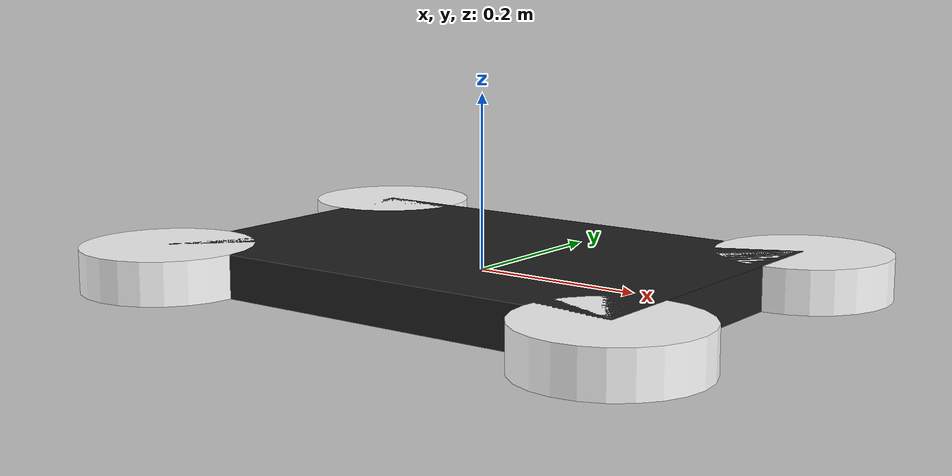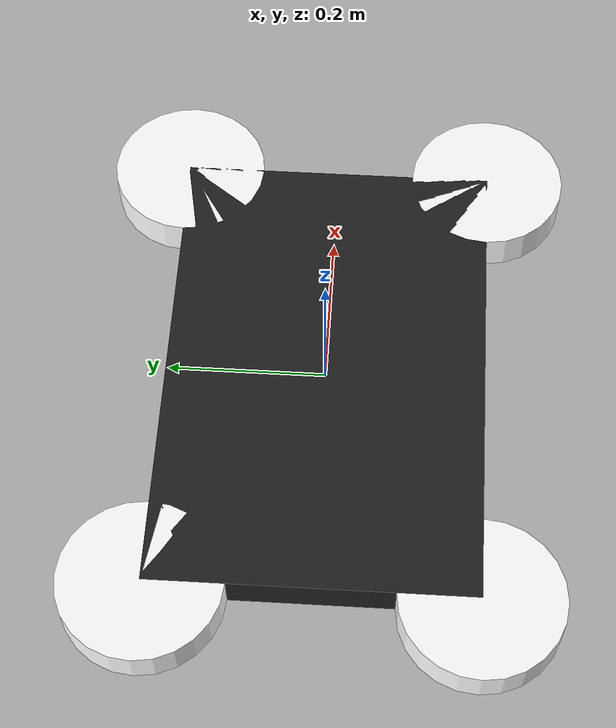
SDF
<sdf version='1.11'>
  <model name='aerial_drone'>
    <link name='dummy_link'>
      <inertial>
        <pose>0 0 0 0 0 0</pose>
        <mass>1.5</mass>
        <inertia>
          <ixx>0.020312500000000001</ixx>
          <ixy>0</ixy>
          <ixz>0</ixz>
          <iyy>0.045312499999999999</iyy>
          <iyz>0</iyz>
          <izz>0.065000000000000002</izz>
        </inertia>
      </inertial>
      <collision name='dummy_link_fixed_joint_lump__base_link_collision'>
        <pose>0 0 0 0 0 0</pose>
        <geometry>
          <box>
            <size>0.59999999999999998 0.40000000000000002 0.050000000000000003</size>
          </box>
        </geometry>
      </collision>
      <visual name='dummy_link_fixed_joint_lump__base_link_visual'>
        <pose>0 0 0 0 0 0</pose>
        <geometry>
          <box>
            <size>0.59999999999999998 0.40000000000000002 0.050000000000000003</size>
          </box>
        </geometry>
        <material>
          <diffuse>0.125 0.125 0.125 1</diffuse>
          <ambient>0.125 0.125 0.125 1</ambient>
        </material>
      </visual>
    </link>
    <joint name='front_left_motor_joint' type='revolute'>
      <pose relative_to='dummy_link'>-0.29999999999999999 0.20000000000000001 0 0 0 0</pose>
      <parent>dummy_link</parent>
      <child>front_left_motor_link</child>
      <axis>
        <xyz>0 0 1</xyz>
        <limit>
          <effort>0</effort>
          <velocity>0</velocity>
          <lower>-inf</lower>
          <upper>inf</upper>
        </limit>
        <dynamics>
          <spring_reference>0</spring_reference>
          <spring_stiffness>0</spring_stiffness>
        </dynamics>
      </axis>
    </joint>
    <link name='front_left_motor_link'>
      <pose relative_to='front_left_motor_joint'>0 0 0 0 0 0</pose>
      <inertial>
        <pose>0 0 0 0 0 0</pose>
        <mass>0.10000000000000001</mass>
        <inertia>
          <ixx>0.00027083333333333338</ixx>
          <ixy>0</ixy>
          <ixz>0</ixz>
          <iyy>0.00027083333333333338</iyy>
          <iyz>0</iyz>
          <izz>0.00050000000000000012</izz>
        </inertia>
      </inertial>
      <collision name='front_left_motor_link_collision'>
        <pose>0 0 0 0 0 0</pose>
        <geometry>
          <cylinder>
            <length>0.050000000000000003</length>
            <radius>0.10000000000000001</radius>
          </cylinder>
        </geometry>
      </collision>
      <visual name='front_left_motor_link_visual'>
        <pose>0 0 0 0 0 0</pose>
        <geometry>
          <cylinder>
            <length>0.050000000000000003</length>
            <radius>0.10000000000000001</radius>
          </cylinder>
        </geometry>
        <material>
          <diffuse>1 1 1 1</diffuse>
          <ambient>1 1 1 1</ambient>
        </material>
      </visual>
    </link>
    <joint name='front_right_motor_joint' type='revolute'>
      <pose relative_to='dummy_link'>0.29999999999999999 0.20000000000000001 0 0 0 0</pose>
      <parent>dummy_link</parent>
      <child>front_right_motor_link</child>
      <axis>
        <xyz>0 0 1</xyz>
        <limit>
          <effort>0</effort>
          <velocity>0</velocity>
          <lower>-inf</lower>
          <upper>inf</upper>
        </limit>
        <dynamics>
          <spring_reference>0</spring_reference>
          <spring_stiffness>0</spring_stiffness>
        </dynamics>
      </axis>
    </joint>
    <link name='front_right_motor_link'>
      <pose relative_to='front_right_motor_joint'>0 0 0 0 0 0</pose>
      <inertial>
        <pose>0 0 0 0 0 0</pose>
        <mass>0.10000000000000001</mass>
        <inertia>
          <ixx>0.00027083333333333338</ixx>
          <ixy>0</ixy>
          <ixz>0</ixz>
          <iyy>0.00027083333333333338</iyy>
          <iyz>0</iyz>
          <izz>0.00050000000000000012</izz>
        </inertia>
      </inertial>
      <collision name='front_right_motor_link_collision'>
        <pose>0 0 0 0 0 0</pose>
        <geometry>
          <cylinder>
            <length>0.050000000000000003</length>
            <radius>0.10000000000000001</radius>
          </cylinder>
        </geometry>
      </collision>
      <visual name='front_right_motor_link_visual'>
        <pose>0 0 0 0 0 0</pose>
        <geometry>
          <cylinder>
            <length>0.050000000000000003</length>
            <radius>0.10000000000000001</radius>
          </cylinder>
        </geometry>
        <material>
          <diffuse>1 1 1 1</diffuse>
          <ambient>1 1 1 1</ambient>
        </material>
      </visual>
    </link>
    <joint name='rear_left_motor_joint' type='revolute'>
      <pose relative_to='dummy_link'>-0.29999999999999999 -0.20000000000000001 0 0 0 0</pose>
      <parent>dummy_link</parent>
      <child>rear_left_motor_link</child>
      <axis>
        <xyz>0 0 1</xyz>
        <limit>
          <effort>0</effort>
          <velocity>0</velocity>
          <lower>-inf</lower>
          <upper>inf</upper>
        </limit>
        <dynamics>
          <spring_reference>0</spring_reference>
          <spring_stiffness>0</spring_stiffness>
        </dynamics>
      </axis>
    </joint>
    <link name='rear_left_motor_link'>
      <pose relative_to='rear_left_motor_joint'>0 0 0 0 0 0</pose>
      <inertial>
        <pose>0 0 0 0 0 0</pose>
        <mass>0.10000000000000001</mass>
        <inertia>
          <ixx>0.00027083333333333338</ixx>
          <ixy>0</ixy>
          <ixz>0</ixz>
          <iyy>0.00027083333333333338</iyy>
          <iyz>0</iyz>
          <izz>0.00050000000000000012</izz>
        </inertia>
      </inertial>
      <collision name='rear_left_motor_link_collision'>
        <pose>0 0 0 0 0 0</pose>
        <geometry>
          <cylinder>
            <length>0.050000000000000003</length>
            <radius>0.10000000000000001</radius>
          </cylinder>
        </geometry>
      </collision>
      <visual name='rear_left_motor_link_visual'>
        <pose>0 0 0 0 0 0</pose>
        <geometry>
          <cylinder>
            <length>0.050000000000000003</length>
            <radius>0.10000000000000001</radius>
          </cylinder>
        </geometry>
        <material>
          <diffuse>1 1 1 1</diffuse>
          <ambient>1 1 1 1</ambient>
        </material>
      </visual>
    </link>
    <joint name='rear_right_motor_joint' type='revolute'>
      <pose relative_to='dummy_link'>0.29999999999999999 -0.20000000000000001 0 0 0 0</pose>
      <parent>dummy_link</parent>
      <child>rear_right_motor_link</child>
      <axis>
        <xyz>0 0 1</xyz>
        <limit>
          <effort>0</effort>
          <velocity>0</velocity>
          <lower>-inf</lower>
          <upper>inf</upper>
        </limit>
        <dynamics>
          <spring_reference>0</spring_reference>
          <spring_stiffness>0</spring_stiffness>
        </dynamics>
      </axis>
    </joint>
    <link name='rear_right_motor_link'>
      <pose relative_to='rear_right_motor_joint'>0 0 0 0 0 0</pose>
      <inertial>
        <pose>0 0 0 0 0 0</pose>
        <mass>0.10000000000000001</mass>
        <inertia>
          <ixx>0.00027083333333333338</ixx>
          <ixy>0</ixy>
          <ixz>0</ixz>
          <iyy>0.00027083333333333338</iyy>
          <iyz>0</iyz>
          <izz>0.00050000000000000012</izz>
        </inertia>
      </inertial>
      <collision name='rear_right_motor_link_collision'>
        <pose>0 0 0 0 0 0</pose>
        <geometry>
          <cylinder>
            <length>0.050000000000000003</length>
            <radius>0.10000000000000001</radius>
          </cylinder>
        </geometry>
      </collision>
      <visual name='rear_right_motor_link_visual'>
        <pose>0 0 0 0 0 0</pose>
        <geometry>
          <cylinder>
            <length>0.050000000000000003</length>
            <radius>0.10000000000000001</radius>
          </cylinder>
        </geometry>
        <material>
          <diffuse>1 1 1 1</diffuse>
          <ambient>1 1 1 1</ambient>
        </material>
      </visual>
    </link>
    <joint name='roll_joint' type='revolute'>
      <pose relative_to='dummy_link'>0 0 0.050000000000000003 0 0 0</pose>
      <parent>dummy_link</parent>
      <child>roll_frame</child>
      <axis>
        <xyz>1 0 0</xyz>
        <limit>
          <lower>-1.5700000000000001</lower>
          <upper>1.5700000000000001</upper>
          <effort>1000</effort>
          <velocity>10</velocity>
        </limit>
        <dynamics>
          <spring_reference>0</spring_reference>
          <spring_stiffness>0</spring_stiffness>
        </dynamics>
      </axis>
    </joint>
    <link name='roll_frame'>
      <pose relative_to='roll_joint'>0 0 0 0 0 0</pose>
      <inertial>
        <pose>0 0 0 0 0 0</pose>
        <mass>0.01</mass>
        <inertia>
          <ixx>3.333333333333333e-07</ixx>
          <ixy>0</ixy>
          <ixz>0</ixz>
          <iyy>3.333333333333333e-07</iyy>
          <iyz>0</iyz>
          <izz>5.0000000000000008e-07</izz>
        </inertia>
      </inertial>
    </link>
    <joint name='pitch_joint' type='revolute'>
      <pose relative_to='roll_frame'>0 0 0 0 0 0</pose>
      <parent>roll_frame</parent>
      <child>pitch_frame</child>
      <axis>
        <xyz>0 1 0</xyz>
        <limit>
          <lower>-1.5700000000000001</lower>
          <upper>1.5700000000000001</upper>
          <effort>1000</effort>
          <velocity>10</velocity>
        </limit>
        <dynamics>
          <spring_reference>0</spring_reference>
          <spring_stiffness>0</spring_stiffness>
        </dynamics>
      </axis>
    </joint>
    <link name='pitch_frame'>
      <pose relative_to='pitch_joint'>0 0 0 0 0 0</pose>
      <inertial>
        <pose>0 0 0 0 0 0</pose>
        <mass>0.01</mass>
        <inertia>
          <ixx>3.333333333333333e-07</ixx>
          <ixy>0</ixy>
          <ixz>0</ixz>
          <iyy>3.333333333333333e-07</iyy>
          <iyz>0</iyz>
          <izz>5.0000000000000008e-07</izz>
        </inertia>
      </inertial>
    </link>
    <plugin name='gazebo_ros_control' filename='libgazebo_ros_control.so'>
      <robotNamespace>/</robotNamespace>
    </plugin>
    <plugin name='mavlink_interface' filename='libgazebo_mavlink_interface.so'>
      <robotNamespace>/</robotNamespace>
      <port>14560</port>
    </plugin>
    <frame name='dummy_to_base' attached_to='dummy_link'>
      <pose>0 0 0 0 0 0</pose>
    </frame>
    <frame name='base_link' attached_to='dummy_to_base'>
      <pose>0 0 0 0 0 0</pose>
    </frame>
  </model>
</sdf>
